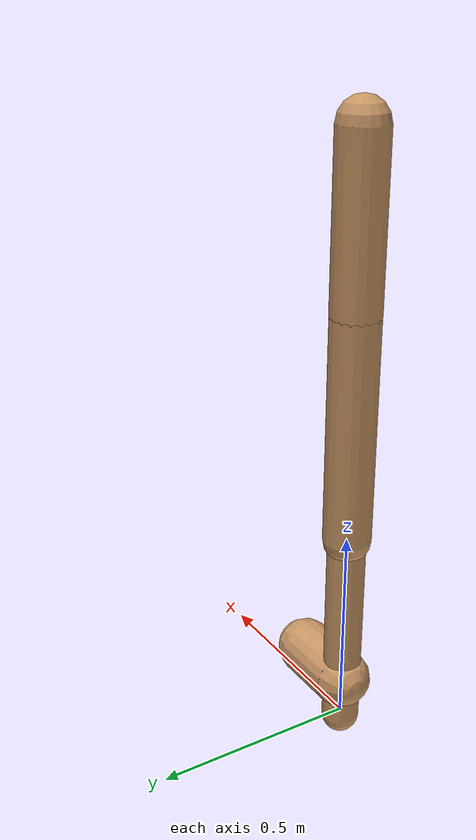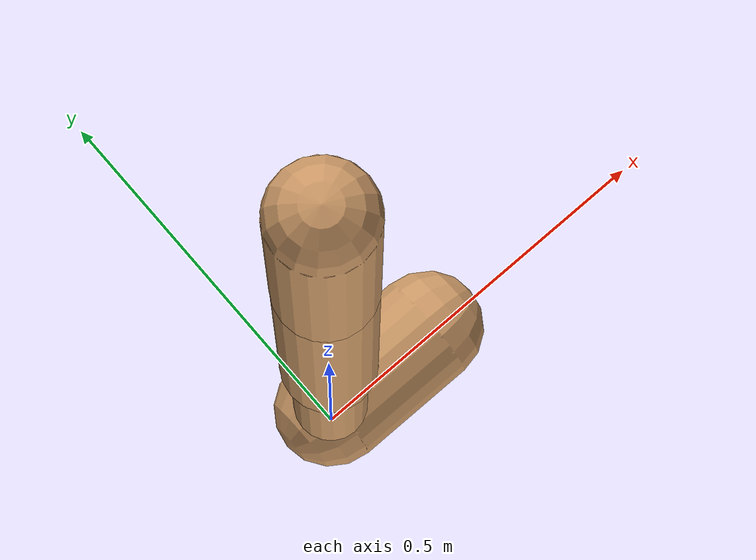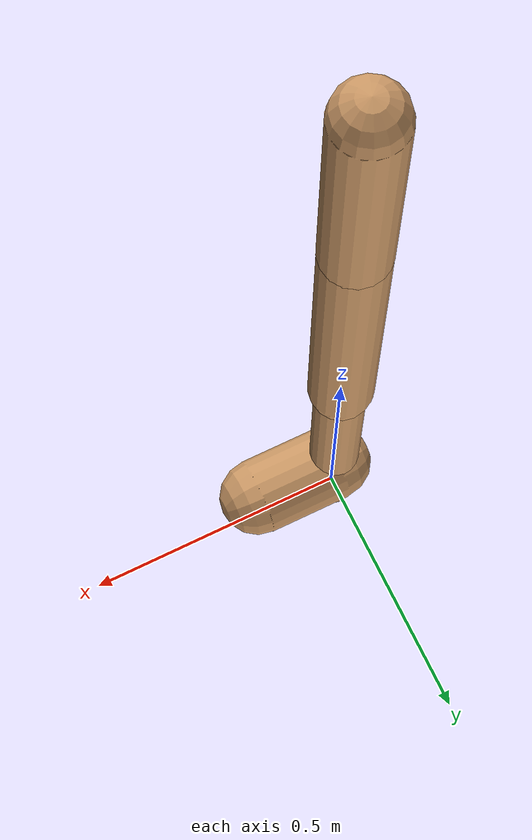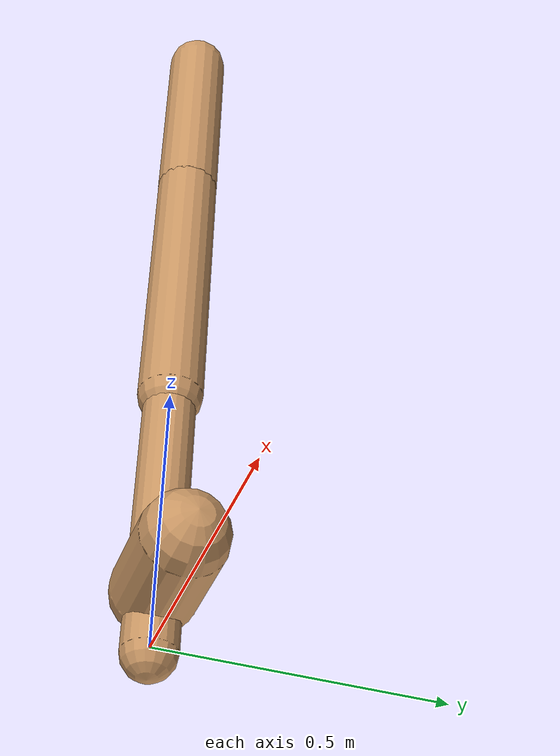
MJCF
<mujoco model="walker2d">
  <compiler angle="degree" coordinate="global" inertiafromgeom="true" />
  <default>
    <joint armature="0.01" damping=".1" limited="true" />
    <geom conaffinity="0" condim="3" contype="1" density="1000" friction="0.8 .1 .1" rgba="0.8 0.6 .4 1" />
  </default>
  <option integrator="RK4" timestep="0.002" />
  <worldbody>

    <body name="torso" pos="0 0 0.20902197779509124">
      <joint armature="0" axis="1 0 0" damping="0" limited="false" name="ignorex" pos="0 0 0" stiffness="0" type="slide" />
      <joint armature="0" axis="0 0 1" damping="0" limited="false" name="ignorez" pos="0 0 0" ref="1.25" stiffness="0" type="slide" />
      <joint armature="0" axis="0 1 0" damping="0" limited="false" name="ignorey" pos="0 0 0" stiffness="0" type="hinge" />
      <geom fromto="0 0 1.45 0 0 1.05" name="torso_geom" size="0.0586485381507743" type="capsule" />
      <body name="thigh">
        <joint axis="0 -1 0" name="thigh_joint" pos="0 0 1.05" range="-150 0" type="hinge" />
        <geom fromto="0.0 0.0 1.05 0.0 0.0 0.5009895894654831" name="thigh_geom" size="0.05816000084555942" type="capsule" />
        <body name="leg" pos="0.0 0.0 -0.09901041053451687">
          <joint axis="0 -1 0" name="leg_joint" pos="0 0 0.6" range="-150 0" type="hinge" />
          <geom fromto="0.0 0.0 0.6 0.0 0.0 -0.010011567260574325" name="leg_geom" size="0.04652800067644753" type="capsule" />
          <body name="foot" pos="0.0 0.0 -0.11001156726057433">
            <joint axis="0 -1 0" name="foot_joint" pos="0 0 0.1" range="-45 45" type="hinge" />
            <geom fromto="0.0 0.0 0.1 0.16044280285787793 0.0 0.1" name="foot_geom" size="0.07253542462485665" type="capsule" />
          </body>
        </body>
      </body>

      <body name="thigh_left">
        <joint axis="0 -1 0" name="thigh_left_joint" pos="0 0 1.05" range="-150 0" type="hinge" />
        <geom fromto="0.0 0.0 1.05 0.0 0.0 0.5009895894654831" name="thigh_left_geom" rgba=".7 .3 .6 1" size="0.05816000084555942" type="capsule" />
        <body name="leg_left" pos="0.0 0.0 -0.09901041053451687">
          <joint axis="0 -1 0" name="leg_left_joint" pos="0 0 0.6" range="-150 0" type="hinge" />
          <geom fromto="0.0 0.0 0.6 0.0 0.0 -0.010011567260574325" name="leg_left_geom" rgba=".7 .3 .6 1" size="0.04652800067644753" type="capsule" />
          <body name="foot_left" pos="0.0 0.0 -0.11001156726057433">
            <joint axis="0 -1 0" name="foot_left_joint" pos="0 0 0.1" range="-45 45" type="hinge" />
            <geom fromto="0.0 0.0 0.1 0.16044280285787793 0.0 0.1" name="foot_left_geom" rgba=".7 .3 .6 1" size="0.07253542462485665" type="capsule" />
          </body>
        </body>
      </body>
    </body>
  </worldbody>
  <actuator>

    <motor ctrllimited="true" ctrlrange="-1.0 1.0" gear="100" joint="thigh_joint" />
    <motor ctrllimited="true" ctrlrange="-1.0 1.0" gear="100" joint="leg_joint" />
    <motor ctrllimited="true" ctrlrange="-1.0 1.0" gear="100" joint="foot_joint" />
    <motor ctrllimited="true" ctrlrange="-1.0 1.0" gear="100" joint="thigh_left_joint" />
    <motor ctrllimited="true" ctrlrange="-1.0 1.0" gear="100" joint="leg_left_joint" />
    <motor ctrllimited="true" ctrlrange="-1.0 1.0" gear="100" joint="foot_left_joint" />

  </actuator>
</mujoco>
